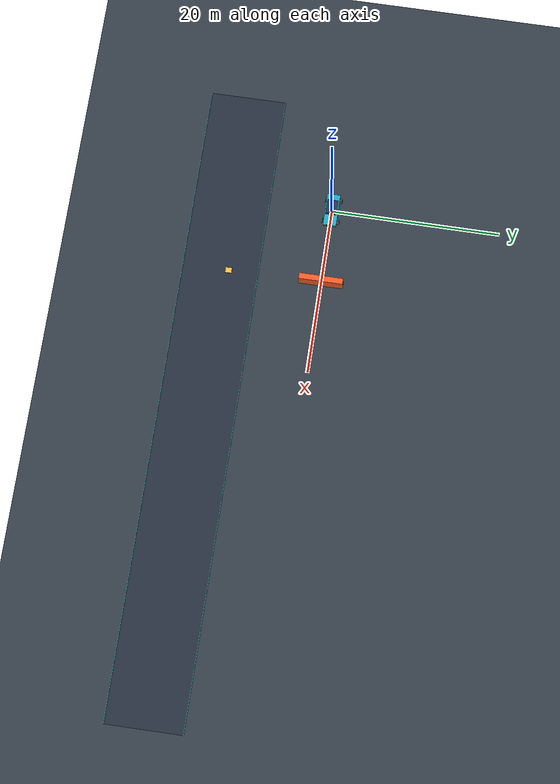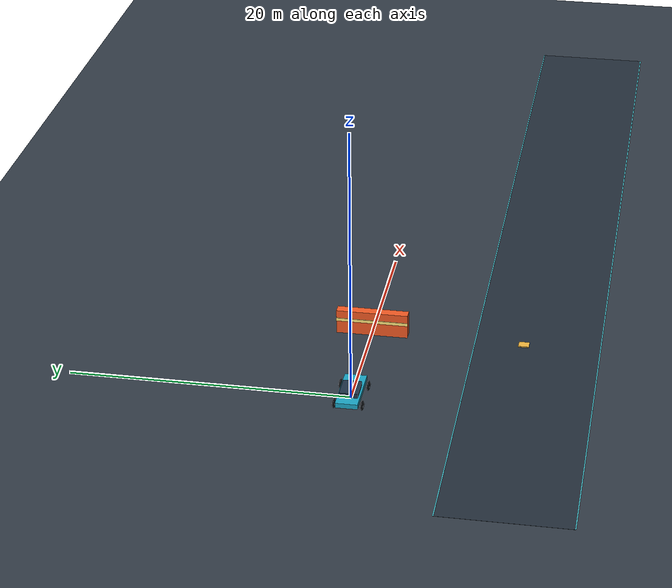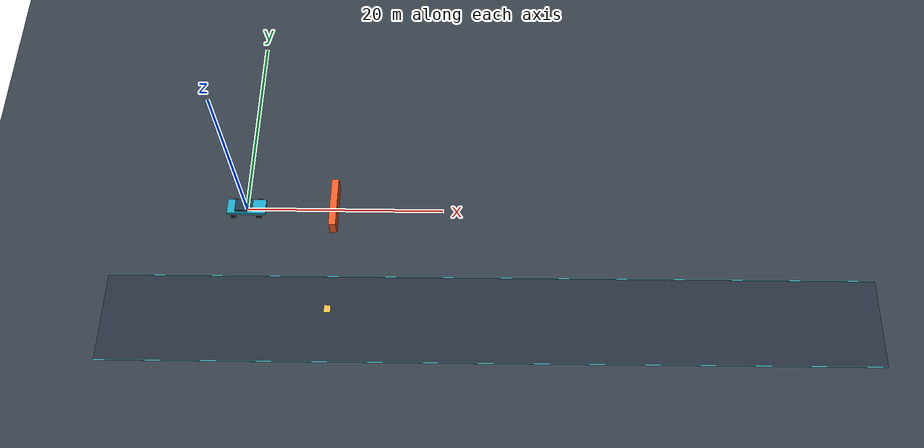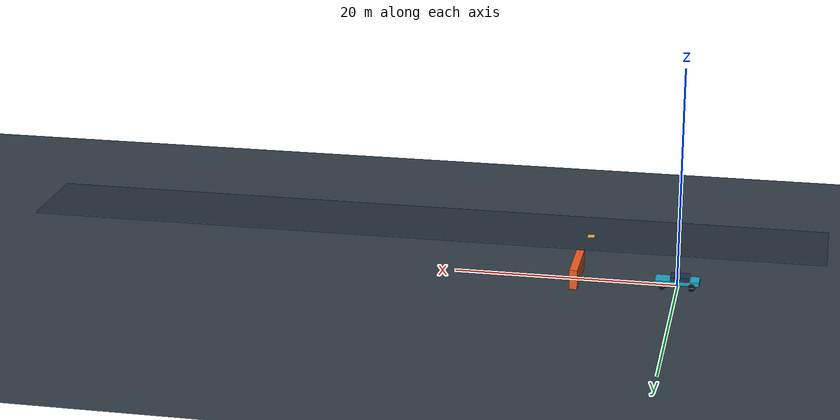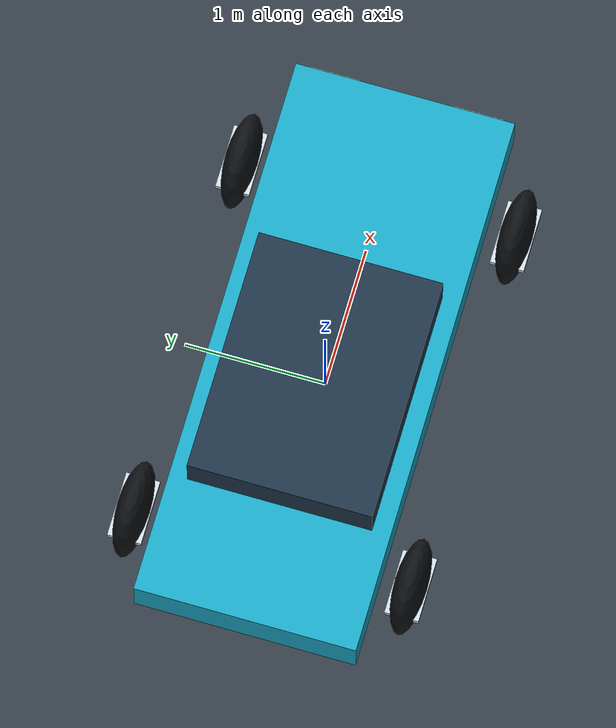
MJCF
<mujoco model="RealityPatch post-crash inspection car">
  <compiler angle="radian"/>
  <option timestep="0.002" integrator="implicitfast" cone="elliptic" iterations="80"/>
  <visual><global offwidth="1280" offheight="720"/><quality shadowsize="2048"/><map zfar="500"/>
    <headlight ambient="0.6 0.6 0.6" diffuse="0.8 0.8 0.8"/>
  </visual>
  <default>
    <geom friction="1.0 0.005 0.0001" solref="0.008 1" solimp="0.95 0.99 0.001"/>
    <joint armature="0.01"/>
    <default class="visual"><geom contype="0" conaffinity="0" mass="0"/></default>
    <default class="tire"><geom type="ellipsoid" size="0.34 0.115 0.34" mass="22" rgba="0.055 0.065 0.08 1" priority="2" friction="1.1 0.005 0.0001"/></default>
  </default>
  <asset>
    <texture name="sky" type="skybox" builtin="gradient" rgb1="0.13 0.19 0.29" rgb2="0.55 0.65 0.73" width="512" height="3072"/>
    <texture name="ground" type="2d" builtin="checker" rgb1="0.18 0.22 0.26" rgb2="0.21 0.25 0.29" width="512" height="512"/>
    <material name="groundmat" texture="ground" texrepeat="35 25" reflectance="0.1"/>
  </asset>
  <worldbody>
    <light pos="0 -10 20" dir="0 0 -1" diffuse="0.9 0.9 0.9"/>
    <light pos="20 12 15" dir="-1 -1 -2" diffuse="0.5 0.6 0.7"/>
    <geom name="ground" type="plane" size="150 100 0.1" material="groundmat"/>
    <geom name="impact_barrier" type="box" pos="9 0 0.9" size="0.35 2.6 0.9" rgba="0.95 0.35 0.14 1"/>
    <geom name="barrier_stripe" class="visual" type="box" pos="8.62 0 1.1" size="0.01 2.6 0.12" rgba="1 0.9 0.48 1"/>
    <geom name="inspection_lane" class="visual" type="box" pos="25 -12 0.004" size="38 4.5 0.004" rgba="0.14 0.18 0.23 1"/>
    <geom class="visual" type="box" pos="25 -16.5 0.01" size="38 0.035 0.006" rgba="0.3 0.85 0.9 1"/>
    <geom class="visual" type="box" pos="25 -7.5 0.01" size="38 0.035 0.006" rgba="0.3 0.85 0.9 1"/>
    <geom name="probe_bump" type="box" pos="9 -11.02 0.045" size="0.32 0.38 0.045" rgba="0.95 0.72 0.25 1"/>
    <camera name="overview" pos="15 -35 24" xyaxes="1 0 0 0 0.72 0.69" fovy="65"/>
    <camera name="side" pos="14 -31 7" xyaxes="1 0 0 0 0.27 0.96" fovy="65"/>
    <body name="chassis" pos="0 0 0.5">
      <freejoint name="chassis_free"/>
      <inertial pos="0 0 0" mass="1050" diaginertia="270 1300 1500"/>
      <geom name="chassis_geom" type="box" size="1.95 0.78 0.18" rgba="0.1 0.65 0.77 1"/>
      <geom class="visual" type="box" pos="-0.25 0 0.31" size="0.86 0.65 0.19" rgba="0.12 0.20 0.28 1"/>
      <geom class="visual" type="box" pos="1.95 0.51 0" size="0.045 0.18 0.06" rgba="1 0.95 0.6 1"/>
      <geom class="visual" type="box" pos="1.95 -0.51 0" size="0.045 0.18 0.06" rgba="1 0.95 0.6 1"/>
      <site name="imu" pos="0 0 0"/>
      <camera name="chase" mode="track" pos="-8 -8 5" xyaxes="0.7 -0.7 0 0.33 0.33 0.88" fovy="58"/>
      <body name="suspension_FL" pos="1.3 0.98 -0.23">
        <joint name="suspension_FL" type="slide" axis="0 0 1" range="-0.10 0.22" stiffness="40000" damping="2200"/>
        <inertial pos="0 0 0" mass="5" diaginertia="0.04 0.04 0.04"/>
        <geom class="visual" type="capsule" fromto="0 0 0 0 0 0.22" size="0.035" rgba="0.9 0.75 0.22 1"/>
        <body name="knuckle_FL">
          <joint name="steer_FL" axis="0 0 1" range="-0.65 0.65" damping="100" armature="1"/>
          <inertial pos="0 0 0" mass="3" diaginertia="0.03 0.03 0.03"/>
          <body name="toe_FL">
            <body name="wheel_FL">
              <joint name="spin_FL" axis="0 1 0" damping="0.3" armature="0.1"/>
              <geom name="tire_FL" class="tire"/>
              <geom class="visual" type="box" size="0.23 0.12 0.023" rgba="0.8 0.85 0.89 1"/>
            </body>
          </body>
        </body>
      </body>
      <body name="suspension_FR" pos="1.3 -0.98 -0.23">
        <joint name="suspension_FR" type="slide" axis="0 0 1" range="-0.10 0.22" stiffness="40000" damping="2200"/>
        <inertial pos="0 0 0" mass="5" diaginertia="0.04 0.04 0.04"/>
        <geom class="visual" type="capsule" fromto="0 0 0 0 0 0.22" size="0.035" rgba="0.9 0.75 0.22 1"/>
        <body name="knuckle_FR">
          <joint name="steer_FR" axis="0 0 1" range="-0.65 0.65" damping="100" armature="1"/>
          <inertial pos="0 0 0" mass="3" diaginertia="0.03 0.03 0.03"/>
          <body name="toe_FR">
            <body name="wheel_FR">
              <joint name="spin_FR" axis="0 1 0" damping="0.3" armature="0.1"/>
              <geom name="tire_FR" class="tire"/>
              <geom class="visual" type="box" size="0.23 0.12 0.023" rgba="0.8 0.85 0.89 1"/>
            </body>
          </body>
        </body>
      </body>
      <body name="suspension_RL" pos="-1.3 0.98 -0.23">
        <joint name="suspension_RL" type="slide" axis="0 0 1" range="-0.10 0.22" stiffness="40000" damping="2200"/>
        <inertial pos="0 0 0" mass="5" diaginertia="0.04 0.04 0.04"/>
        <geom class="visual" type="capsule" fromto="0 0 0 0 0 0.22" size="0.035" rgba="0.9 0.75 0.22 1"/>
        <body name="knuckle_RL">
          <inertial pos="0 0 0" mass="3" diaginertia="0.03 0.03 0.03"/>
          <body name="toe_RL">
            <body name="wheel_RL">
              <joint name="spin_RL" axis="0 1 0" damping="0.3" armature="0.1"/>
              <geom name="tire_RL" class="tire"/>
              <geom class="visual" type="box" size="0.23 0.12 0.023" rgba="0.8 0.85 0.89 1"/>
            </body>
          </body>
        </body>
      </body>
      <body name="suspension_RR" pos="-1.3 -0.98 -0.23">
        <joint name="suspension_RR" type="slide" axis="0 0 1" range="-0.10 0.22" stiffness="40000" damping="2200"/>
        <inertial pos="0 0 0" mass="5" diaginertia="0.04 0.04 0.04"/>
        <geom class="visual" type="capsule" fromto="0 0 0 0 0 0.22" size="0.035" rgba="0.9 0.75 0.22 1"/>
        <body name="knuckle_RR">
          <inertial pos="0 0 0" mass="3" diaginertia="0.03 0.03 0.03"/>
          <body name="toe_RR">
            <body name="wheel_RR">
              <joint name="spin_RR" axis="0 1 0" damping="0.3" armature="0.1"/>
              <geom name="tire_RR" class="tire"/>
              <geom class="visual" type="box" size="0.23 0.12 0.023" rgba="0.8 0.85 0.89 1"/>
            </body>
          </body>
        </body>
      </body>
    </body>
  </worldbody>
  <actuator>
    <position name="rack_FL" joint="steer_FL" kp="18000" kv="400" ctrlrange="-0.65 0.65" forcerange="-6000 6000"/>
    <position name="rack_FR" joint="steer_FR" kp="18000" kv="400" ctrlrange="-0.65 0.65" forcerange="-6000 6000"/>
    <motor name="drive_FL" joint="spin_FL" ctrlrange="-1000 1000"/>
    <motor name="drive_FR" joint="spin_FR" ctrlrange="-1000 1000"/>
    <motor name="drive_RL" joint="spin_RL" ctrlrange="-1000 1000"/>
    <motor name="drive_RR" joint="spin_RR" ctrlrange="-1000 1000"/>
  </actuator>
  <sensor><accelerometer name="acceleration" site="imu"/><gyro name="angular_velocity" site="imu"/></sensor>
</mujoco>
